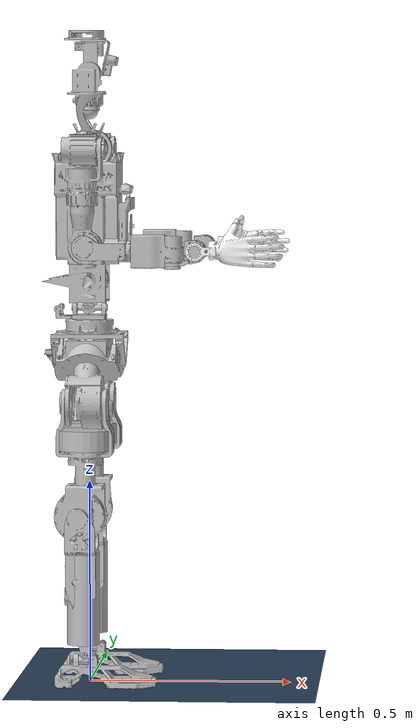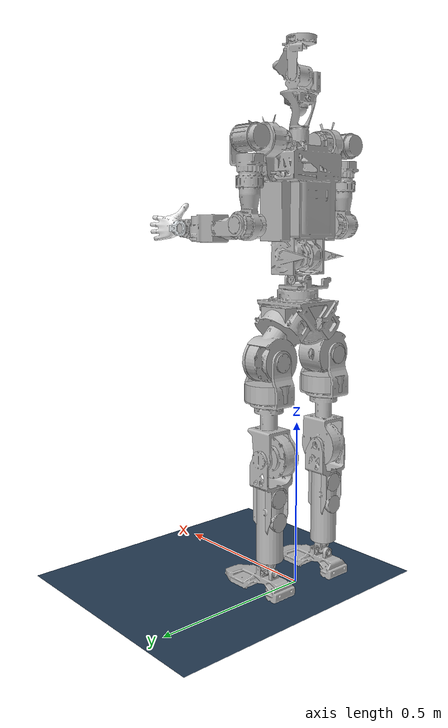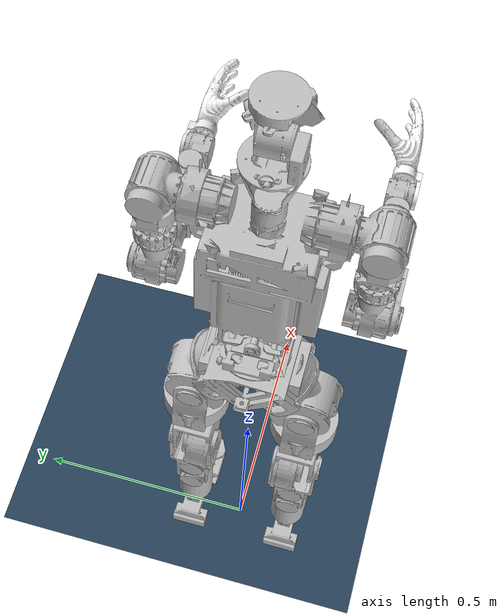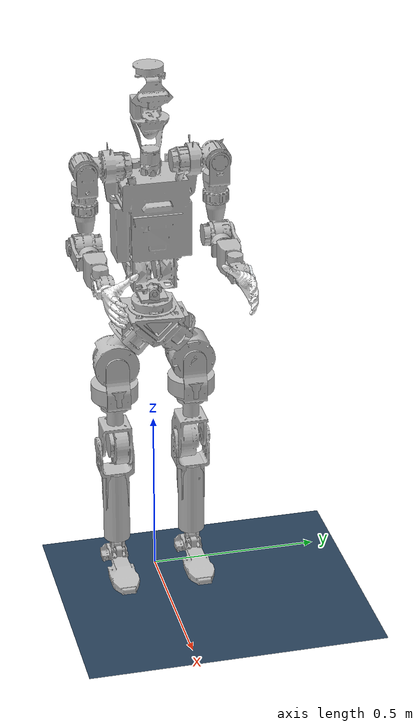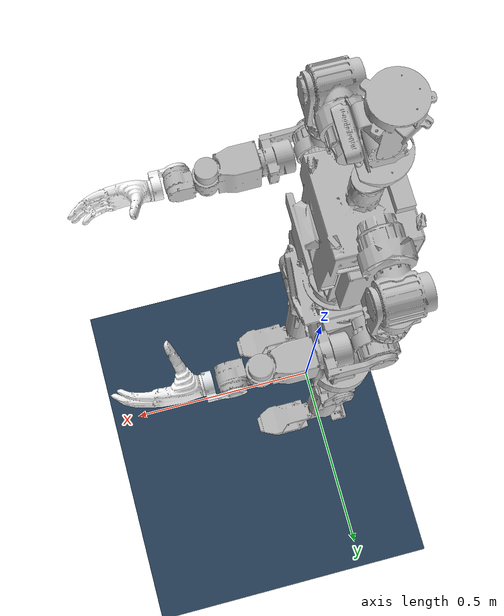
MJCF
<mujoco model="v1.1_u3.0_0303_v0_29dof">
  <compiler angle="radian" meshdir="../urdf/meshes/"/>
  <default>
    <joint damping="0.001" armature="0.01" frictionloss="0.1"/>
  </default>
  <asset>
    <mesh name="base_link" content_type="model/stl" file="base_link.STL"/>
    <mesh name="left_hip_pitch_link" content_type="model/stl" file="left_hip_pitch_link.STL"/>
    <mesh name="left_hip_roll_link" content_type="model/stl" file="left_hip_roll_link.STL"/>
    <mesh name="left_hip_yaw_link" content_type="model/stl" file="left_hip_yaw_link.STL"/>
    <mesh name="left_knee_link" content_type="model/stl" file="left_knee_link.STL"/>
    <mesh name="left_ankle_pitch_link" content_type="model/stl" file="left_ankle_pitch_link.STL"/>
    <mesh name="left_ankle_roll_link" content_type="model/stl" file="left_ankle_roll_link.STL"/>
    <mesh name="right_hip_pitch_link" content_type="model/stl" file="right_hip_pitch_link.STL"/>
    <mesh name="right_hip_roll_link" content_type="model/stl" file="right_hip_roll_link.STL"/>
    <mesh name="right_hip_yaw_link" content_type="model/stl" file="right_hip_yaw_link.STL"/>
    <mesh name="right_knee_link" content_type="model/stl" file="right_knee_link.STL"/>
    <mesh name="right_ankle_pitch_link" content_type="model/stl" file="right_ankle_pitch_link.STL"/>
    <mesh name="right_ankle_roll_link" content_type="model/stl" file="right_ankle_roll_link.STL"/>
    <mesh name="waist_yaw_link" content_type="model/stl" file="waist_yaw_link.STL"/>
    <mesh name="waist_roll_link" content_type="model/stl" file="waist_roll_link.STL"/>
    <mesh name="waist_pitch_link" content_type="model/stl" file="waist_pitch_link.STL"/>
    <mesh name="head_yaw_link" content_type="model/stl" file="head_yaw_link.STL"/>
    <mesh name="head_pitch_link" content_type="model/stl" file="head_pitch_link.STL"/>
    <mesh name="left_shoulder_pitch_link" content_type="model/stl" file="left_shoulder_pitch_link.STL"/>
    <mesh name="left_shoulder_roll_link" content_type="model/stl" file="left_shoulder_roll_link.STL"/>
    <mesh name="left_shoulder_yaw_link" content_type="model/stl" file="left_shoulder_yaw_link.STL"/>
    <mesh name="left_elbow_link" content_type="model/stl" file="left_elbow_link.STL"/>
    <mesh name="left_wrist_roll_link" content_type="model/stl" file="left_wrist_roll_link.STL"/>
    <mesh name="left_wrist_yaw_link" content_type="model/stl" file="left_wrist_yaw_link.STL"/>
    <mesh name="left_wrist_pitch_link" content_type="model/stl" file="left_wrist_pitch_link.STL"/>
    <mesh name="left_hand_link" content_type="model/stl" file="left_hand_link.STL"/>
    <mesh name="right_shoulder_pitch_link" content_type="model/stl" file="right_shoulder_pitch_link.STL"/>
    <mesh name="right_shoulder_roll_link" content_type="model/stl" file="right_shoulder_roll_link.STL"/>
    <mesh name="right_shoulder_yaw_link" content_type="model/stl" file="right_shoulder_yaw_link.STL"/>
    <mesh name="right_elbow_link" content_type="model/stl" file="right_elbow_link.STL"/>
    <mesh name="right_wrist_roll_link" content_type="model/stl" file="right_wrist_roll_link.STL"/>
    <mesh name="right_wrist_yaw_link" content_type="model/stl" file="right_wrist_yaw_link.STL"/>
    <mesh name="right_wrist_pitch_link" content_type="model/stl" file="right_wrist_pitch_link.STL"/>
    <mesh name="right_hand_link" content_type="model/stl" file="right_hand_link.STL"/>
  </asset>

  <worldbody>
    <body name="base_link" pos="0 0 0.87">
      <inertial pos="-0.000112 5e-06 -0.049468" quat="0.498239 0.498283 -0.501755 0.501711" mass="5.717" diaginertia="0.0303601 0.0283439 0.019181"/>
      <joint name="floating_base_joint" type="free" limited="false" actuatorfrclimited="false"/>
      <geom type="mesh" contype="0" conaffinity="0" group="1" density="0" rgba="0.75294 0.75294 0.75294 1" mesh="base_link"/>
      <geom size="0.05 0.1 0.025" pos="0 0 -0.04" type="box" rgba="0.75294 0.75294 0.75294 1"/>
      <site name="imu_in_pelvis" size="0.01" pos="-0.09835 0 -0.052"/>
      <body name="left_hip_pitch_link" pos="0 0.11619 -0.12455" quat="0.923879 -0.382684 0 0">
        <inertial pos="0.003887 0.021532 -0.028237" quat="0.870396 0.486242 -0.0312337 -0.0707405" mass="2.3165" diaginertia="0.00535112 0.00457582 0.00400306"/>
        <joint name="left_hip_pitch_joint" pos="0 0 0" axis="0 1 0" range="-2.618 2.618" actuatorfrcrange="-150 150"/>
        <geom type="mesh" contype="0" conaffinity="0" group="1" density="0" rgba="0.752941 0.752941 0.752941 1" mesh="left_hip_pitch_link"/>
        <body name="left_hip_roll_link" pos="-0.001 0.03 -0.03" quat="0.923879 0.382684 0 0">
          <inertial pos="0.001502 2.7e-05 -0.084234" quat="0.62727 0.326393 0.326393 0.62727" mass="1.48" diaginertia="0.004535 0.00337114 0.00296686"/>
          <joint name="left_hip_roll_joint" pos="0 0 0" axis="1 0 0" range="-0.7854 2.3563" actuatorfrcrange="-150 150"/>
          <geom type="mesh" contype="0" conaffinity="0" group="1" density="0" rgba="0.752941 0.752941 0.752941 1" mesh="left_hip_roll_link"/>
          <geom size="0.07 0.025" pos="0 0 -0.09" type="cylinder" rgba="0.752941 0.752941 0.752941 1"/>
          <body name="left_hip_yaw_link" pos="0 0 -0.13">
            <inertial pos="-0.0107 -0.008795 -0.120268" quat="0.711829 0.00814217 0.0822562 0.697472" mass="2.325" diaginertia="0.00969146 0.00888604 0.00293651"/>
            <joint name="left_hip_yaw_joint" pos="0 0 0" axis="0 0 1" range="-2.0944 2.0944" actuatorfrcrange="-90 90"/>
            <geom type="mesh" contype="0" conaffinity="0" group="1" density="0" rgba="0.752941 0.752941 0.752941 1" mesh="left_hip_yaw_link"/>
            <geom type="mesh" rgba="0.752941 0.752941 0.752941 1" mesh="left_hip_yaw_link"/>
            <body name="left_knee_link" pos="-0.015 0 -0.151">
              <inertial pos="0.004163 0.000262 -0.138565" quat="0.99994 -0.00282969 -0.0106115 1.22531e-05" mass="1.83395" diaginertia="0.0104298 0.00990025 0.00194592"/>
              <joint name="left_knee_joint" pos="0 0 0" axis="0 1 0" range="-0.0873 2.0944" actuatorfrcrange="-150 150"/>
              <geom type="mesh" contype="0" conaffinity="0" group="1" density="0" rgba="0.752941 0.752941 0.752941 1" mesh="left_knee_link"/>
              <geom size="0.04 0.115" pos="0.01 0 -0.2" type="cylinder" rgba="0.752941 0.752941 0.752941 1"/>
              <body name="left_ankle_pitch_link" pos="0.015 0.0005 -0.339">
                <inertial pos="-0.002351 -0.000479 -0.006916" quat="0.344336 0.344336 -0.617602 0.617602" mass="0.102" diaginertia="2.22361e-05 1.77639e-05 1.7e-05"/>
                <joint name="left_ankle_pitch_joint" pos="0 0 0" axis="0 1 0" range="-0.9599 0.5218" actuatorfrcrange="-54 54"/>
                <geom type="mesh" contype="0" conaffinity="0" group="1" density="0" rgba="0.752941 0.752941 0.752941 1" mesh="left_ankle_pitch_link"/>
                <body name="left_ankle_roll_link" pos="0 0 -0.015">
                  <inertial pos="0.04469 -3.2e-05 -0.035309" quat="0.00358632 0.734652 0.00406875 0.678422" mass="0.968" diaginertia="0.00496359 0.00487899 0.000595419"/>
                  <joint name="left_ankle_roll_joint" pos="0 0 0" axis="1 0 0" range="-0.1745 0.1745" actuatorfrcrange="-54 54"/>
                  <geom type="mesh" contype="0" conaffinity="0" group="1" density="0" rgba="0.752941 0.752941 0.752941 1" mesh="left_ankle_roll_link"/>
                  <geom size="0.005" pos="-0.06 0.035 -0.06" rgba="0.752941 0.752941 0.752941 1"/>
                  <geom size="0.005" pos="-0.06 -0.035 -0.06" rgba="0.752941 0.752941 0.752941 1"/>
                  <geom size="0.005" pos="0.13 0.035 -0.06" rgba="0.752941 0.752941 0.752941 1"/>
                  <geom size="0.005" pos="0.13 -0.035 -0.06" rgba="0.752941 0.752941 0.752941 1"/>
                  <geom size="0.005" pos="0.17 0.018 -0.058" rgba="0.752941 0.752941 0.752941 1"/>
                  <geom size="0.005" pos="0.17 -0.018 -0.058" rgba="0.752941 0.752941 0.752941 1"/>
                  <geom size="0.005" pos="-0.035 0.035 -0.06" rgba="0.752941 0.752941 0.752941 1"/>
                  <geom size="0.005" pos="-0.035 -0.035 -0.06" rgba="0.752941 0.752941 0.752941 1"/>
                  <geom size="0.005" pos="0.06 0.035 -0.06" rgba="0.752941 0.752941 0.752941 1"/>
                  <geom size="0.005" pos="0.06 -0.035 -0.06" rgba="0.752941 0.752941 0.752941 1"/>
                </body>
              </body>
            </body>
          </body>
        </body>
      </body>
      <body name="right_hip_pitch_link" pos="0 -0.11619 -0.12455" quat="0.923879 0.382684 0 0">
        <inertial pos="0.003887 -0.021532 -0.028237" quat="0.486242 0.870396 0.0707405 0.0312337" mass="2.3165" diaginertia="0.00535112 0.00457582 0.00400306"/>
        <joint name="right_hip_pitch_joint" pos="0 0 0" axis="0 1 0" range="-2.618 2.618" actuatorfrcrange="-150 150"/>
        <geom type="mesh" contype="0" conaffinity="0" group="1" density="0" rgba="0.752941 0.752941 0.752941 1" mesh="right_hip_pitch_link"/>
        <body name="right_hip_roll_link" pos="-0.001 -0.03 -0.03" quat="0.923879 -0.382684 0 0">
          <inertial pos="0.001502 -2.7e-05 -0.084234" quat="0.62727 0.326393 0.326393 0.62727" mass="1.48" diaginertia="0.004535 0.00337114 0.00296686"/>
          <joint name="right_hip_roll_joint" pos="0 0 0" axis="1 0 0" range="-2.3563 0.7854" actuatorfrcrange="-150 150"/>
          <geom type="mesh" contype="0" conaffinity="0" group="1" density="0" rgba="0.752941 0.752941 0.752941 1" mesh="right_hip_roll_link"/>
          <geom size="0.07 0.025" pos="0 0 -0.09" type="cylinder" rgba="0.752941 0.752941 0.752941 1"/>
          <body name="right_hip_yaw_link" pos="0 0 -0.13">
            <inertial pos="-0.0107 0.008795 -0.120268" quat="0.697472 0.0822562 0.00814217 0.711829" mass="2.325" diaginertia="0.00969146 0.00888604 0.00293651"/>
            <joint name="right_hip_yaw_joint" pos="0 0 0" axis="0 0 1" range="-2.0944 2.0944" actuatorfrcrange="-90 90"/>
            <geom type="mesh" contype="0" conaffinity="0" group="1" density="0" rgba="0.752941 0.752941 0.752941 1" mesh="right_hip_yaw_link"/>
            <geom type="mesh" rgba="0.752941 0.752941 0.752941 1" mesh="right_hip_yaw_link"/>
            <body name="right_knee_link" pos="-0.015 0 -0.151">
              <inertial pos="0.004163 -0.000262 -0.138565" quat="0.99994 0.00282969 -0.0106115 -1.22531e-05" mass="1.83395" diaginertia="0.0104298 0.00990025 0.00194592"/>
              <joint name="right_knee_joint" pos="0 0 0" axis="0 1 0" range="-0.0873 2.0944" actuatorfrcrange="-150 150"/>
              <geom type="mesh" contype="0" conaffinity="0" group="1" density="0" rgba="0.752941 0.752941 0.752941 1" mesh="right_knee_link"/>
              <geom size="0.04 0.115" pos="0.01 0 -0.2" type="cylinder" rgba="0.752941 0.752941 0.752941 1"/>
              <body name="right_ankle_pitch_link" pos="0.015 -0.0005 -0.339">
                <inertial pos="-0.002351 0.000479 -0.006916" quat="0.344336 0.344336 -0.617602 0.617602" mass="0.102" diaginertia="2.22361e-05 1.77639e-05 1.7e-05"/>
                <joint name="right_ankle_pitch_joint" pos="0 0 0" axis="0 1 0" range="-0.9599 0.5218" actuatorfrcrange="-54 54"/>
                <geom type="mesh" contype="0" conaffinity="0" group="1" density="0" rgba="0.752941 0.752941 0.752941 1" mesh="right_ankle_pitch_link"/>
                <body name="right_ankle_roll_link" pos="0 0 -0.015">
                  <inertial pos="0.044949 3.2e-05 -0.035309" quat="-0.00358632 0.734652 -0.00406875 0.678422" mass="0.968" diaginertia="0.00496359 0.00487899 0.000595419"/>
                  <joint name="right_ankle_roll_joint" pos="0 0 0" axis="1 0 0" range="-0.1745 0.1745" actuatorfrcrange="-54 54"/>
                  <geom type="mesh" contype="0" conaffinity="0" group="1" density="0" rgba="0.752941 0.752941 0.752941 1" mesh="right_ankle_roll_link"/>
                  <geom size="0.005" pos="-0.06 0.035 -0.06" rgba="0.752941 0.752941 0.752941 1"/>
                  <geom size="0.005" pos="-0.06 -0.035 -0.06" rgba="0.752941 0.752941 0.752941 1"/>
                  <geom size="0.005" pos="0.13 0.035 -0.06" rgba="0.752941 0.752941 0.752941 1"/>
                  <geom size="0.005" pos="0.13 -0.035 -0.06" rgba="0.752941 0.752941 0.752941 1"/>
                  <geom size="0.005" pos="0.17 0.018 -0.058" rgba="0.752941 0.752941 0.752941 1"/>
                  <geom size="0.005" pos="0.17 -0.018 -0.058" rgba="0.752941 0.752941 0.752941 1"/>
                  <geom size="0.005" pos="-0.035 0.035 -0.06" rgba="0.752941 0.752941 0.752941 1"/>
                  <geom size="0.005" pos="-0.035 -0.035 -0.06" rgba="0.752941 0.752941 0.752941 1"/>
                  <geom size="0.005" pos="0.06 0.035 -0.06" rgba="0.752941 0.752941 0.752941 1"/>
                  <geom size="0.005" pos="0.06 -0.035 -0.06" rgba="0.752941 0.752941 0.752941 1"/>
                </body>
              </body>
            </body>
          </body>
        </body>
      </body>
      <body name="waist_yaw_link">
        <inertial pos="-0.025004 1e-06 0.041503" quat="0 0.73528 0 0.677763" mass="0.287" diaginertia="0.000603691 0.000469 0.000196309"/>
        <joint name="waist_yaw_joint" pos="0 0 0" axis="0 0 1" range="-1.5708 1.5708" actuatorfrcrange="-90 90"/>
        <geom type="mesh" contype="0" conaffinity="0" group="1" density="0" rgba="0.752941 0.752941 0.752941 1" mesh="waist_yaw_link"/>
        <geom size="0.04 0.04 0.005" pos="0 0 0.04" type="box" rgba="0.752941 0.752941 0.752941 1"/>
        <body name="waist_roll_link" pos="0 0 0.0615">
          <inertial pos="0 0 -1.7e-05" quat="0 0.707107 0 0.707107" mass="0.185" diaginertia="7.5e-05 5.5e-05 2.6e-05"/>
          <joint name="waist_roll_joint" pos="0 0 0" axis="1 0 0" range="-0.1745 0.1745" actuatorfrcrange="-90 90"/>
          <geom type="mesh" contype="0" conaffinity="0" group="1" density="0" rgba="0.752941 0.752941 0.752941 1" mesh="waist_roll_link"/>
          <geom type="mesh" rgba="0.752941 0.752941 0.752941 1" mesh="waist_roll_link"/>
          <body name="torso_link">
            <inertial pos="-0.00480175 0.000110024 0.265108" quat="0.999841 0.000167294 0.0178016 -0.000683073" mass="12.4908" diaginertia="0.314143 0.272447 0.0764862"/>
            <joint name="waist_pitch_joint" pos="0 0 0" axis="0 1 0" range="-0.3491 0.6981" actuatorfrcrange="-90 90"/>
            <geom type="mesh" contype="0" conaffinity="0" group="1" density="0" rgba="0.752941 0.752941 0.752941 1" mesh="waist_pitch_link"/>
            <geom type="mesh" rgba="0.752941 0.752941 0.752941 1" mesh="waist_pitch_link"/>
            <geom pos="0 0 0.4375" type="mesh" contype="0" conaffinity="0" group="1" density="0" rgba="0.752941 0.752941 0.752941 1" mesh="head_yaw_link"/>
            <geom pos="0 0 0.4375" type="mesh" rgba="0.752941 0.752941 0.752941 1" mesh="head_yaw_link"/>
            <geom pos="0 0 0.5795" type="mesh" contype="0" conaffinity="0" group="1" density="0" rgba="0.752941 0.752941 0.752941 1" mesh="head_pitch_link"/>
            <geom pos="0 0 0.5795" type="mesh" rgba="0.752941 0.752941 0.752941 1" mesh="head_pitch_link"/>
            <body name="left_shoulder_pitch_link" pos="0 0.1446 0.3935">
              <inertial pos="0.005662 0.045222 -4e-06" quat="0.601501 0.371748 -0.601501 0.371748" mass="0.82" diaginertia="0.000604 0.000578 0.000573"/>
              <joint name="left_shoulder_pitch_joint" pos="0 0 0" axis="0 1 0" range="-2.618 2.618" actuatorfrcrange="-80 80"/>
              <geom type="mesh" contype="0" conaffinity="0" group="1" density="0" rgba="0.752941 0.752941 0.752941 1" mesh="left_shoulder_pitch_link"/>
              <geom type="mesh" rgba="0.752941 0.752941 0.752941 1" mesh="left_shoulder_pitch_link"/>
              <body name="left_shoulder_roll_link" pos="0 0.047 0">
                <inertial pos="0.004162 6e-05 -0.097299" quat="0.688168 0.162556 0.162556 0.688168" mass="0.888" diaginertia="0.001422 0.0014176 0.0007054"/>
                <joint name="left_shoulder_roll_joint" pos="0 0 0" axis="1 0 0" range="-0.0873 3.2289" actuatorfrcrange="-80 80"/>
                <geom type="mesh" contype="0" conaffinity="0" group="1" density="0" rgba="0.752941 0.752941 0.752941 1" mesh="left_shoulder_roll_link"/>
                <geom type="mesh" rgba="0.752941 0.752941 0.752941 1" mesh="left_shoulder_roll_link"/>
                <body name="left_shoulder_yaw_link" pos="-0.00072034 0 -0.1346">
                  <inertial pos="0.006267 0.007667 -0.091718" quat="0.696333 0.00192978 -0.0814017 0.713085" mass="0.98" diaginertia="0.00140405 0.00136938 0.000763573"/>
                  <joint name="left_shoulder_yaw_joint" pos="0 0 0" axis="0 0 1" range="-2.618 2.618" actuatorfrcrange="-80 80"/>
                  <geom type="mesh" contype="0" conaffinity="0" group="1" density="0" rgba="0.752941 0.752941 0.752941 1" mesh="left_shoulder_yaw_link"/>
                  <geom type="mesh" rgba="0.752941 0.752941 0.752941 1" mesh="left_shoulder_yaw_link"/>
                  <body name="left_elbow_link" pos="0.0075 0 -0.1019">
                    <inertial pos="0.081388 0.010684 -0.008487" quat="0.204129 0.704737 -0.163861 0.659413" mass="0.516" diaginertia="0.000713308 0.00066173 0.000240962"/>
                    <joint name="left_elbow_joint" pos="0 0 0" axis="0 1 0" range="-0.6981 3.3161" actuatorfrcrange="-80 80"/>
                    <geom type="mesh" contype="0" conaffinity="0" group="1" density="0" rgba="0.752941 0.752941 0.752941 1" mesh="left_elbow_link"/>
                    <geom type="mesh" rgba="0.752941 0.752941 0.752941 1" mesh="left_elbow_link"/>
                    <body name="left_wrist_roll_link" pos="0.1 0.0019 -0.009">
                      <inertial pos="0.08529 -4.2e-05 -0.005123" quat="0.460214 0.536845 0.536845 0.460214" mass="0.67" diaginertia="0.00113 0.00105584 0.000420156"/>
                      <joint name="left_wrist_roll_joint" pos="0 0 0" axis="1 0 0" range="-2.618 2.618" actuatorfrcrange="-11.5 11.5"/>
                      <geom type="mesh" contype="0" conaffinity="0" group="1" density="0" rgba="0.752941 0.752941 0.752941 1" mesh="left_wrist_roll_link"/>
                      <geom type="mesh" rgba="0.752941 0.752941 0.752941 1" mesh="left_wrist_roll_link"/>
                      <body name="left_wrist_yaw_link" pos="0.1135 0 0">
                        <inertial pos="0.051473 0.006559 -0.001913" quat="0.598709 0.294471 0.367661 0.647811" mass="0.365" diaginertia="0.0001769 0.000172925 0.000118175"/>
                        <joint name="left_wrist_yaw_joint" pos="0 0 0" axis="0 0 1" range="-1.6581 1.5708" actuatorfrcrange="-11.5 11.5"/>
                        <geom type="mesh" contype="0" conaffinity="0" group="1" density="0" rgba="0.752941 0.752941 0.752941 1" mesh="left_wrist_yaw_link"/>
                        <geom type="mesh" rgba="0.752941 0.752941 0.752941 1" mesh="left_wrist_yaw_link"/>
                        <body name="left_wrist_pitch_link" pos="0.054 0 0">
                          <inertial pos="0.112572 -0.00616709 0.0100642" quat="0.689134 0.340149 0.55866 0.311917" mass="0.549" diaginertia="0.0019349 0.00153131 0.000570391"/>
                          <joint name="left_wrist_pitch_joint" pos="0 0 0" axis="0 1 0" range="-1.6581 1.4835" actuatorfrcrange="-11.5 11.5"/>
                          <geom type="mesh" contype="0" conaffinity="0" group="1" density="0" rgba="0.898039 0.917647 0.929412 1" mesh="left_wrist_pitch_link"/>
                          <geom type="mesh" rgba="0.898039 0.917647 0.929412 1" mesh="left_wrist_pitch_link"/>
                          <geom pos="0.052 0 0.001" quat="1 0 0 0" type="mesh" contype="0" conaffinity="0" group="1" density="0" rgba="1 1 1 1" mesh="left_hand_link"/>
                          <geom pos="0.052 0 0.001" quat="1 0 0 0" type="mesh" rgba="1 1 1 1" mesh="left_hand_link"/>
                        </body>
                      </body>
                    </body>
                  </body>
                </body>
              </body>
            </body>
            <body name="right_shoulder_pitch_link" pos="0 -0.1446 0.3935">
              <inertial pos="0.005662 -0.045222 -4e-06" quat="0.371748 0.601501 -0.371748 0.601501" mass="0.82" diaginertia="0.000604 0.000578 0.000573"/>
              <joint name="right_shoulder_pitch_joint" pos="0 0 0" axis="0 1 0" range="-2.618 2.618" actuatorfrcrange="-80 80"/>
              <geom type="mesh" contype="0" conaffinity="0" group="1" density="0" rgba="0.752941 0.752941 0.752941 1" mesh="right_shoulder_pitch_link"/>
              <geom type="mesh" rgba="0.752941 0.752941 0.752941 1" mesh="right_shoulder_pitch_link"/>
              <body name="right_shoulder_roll_link" pos="0 -0.047 0">
                <inertial pos="0.004162 -6e-05 -0.097299" quat="0.688168 0.162556 0.162556 0.688168" mass="0.888" diaginertia="0.001422 0.0014176 0.0007054"/>
                <joint name="right_shoulder_roll_joint" pos="0 0 0" axis="1 0 0" range="-3.2289 0.0873" actuatorfrcrange="-80 80"/>
                <geom type="mesh" contype="0" conaffinity="0" group="1" density="0" rgba="0.752941 0.752941 0.752941 1" mesh="right_shoulder_roll_link"/>
                <geom type="mesh" rgba="0.752941 0.752941 0.752941 1" mesh="right_shoulder_roll_link"/>
                <body name="right_shoulder_yaw_link" pos="-0.00072034 0 -0.1346">
                  <inertial pos="0.006267 -0.007667 -0.091718" quat="0.713085 -0.0814017 0.00192978 0.696333" mass="0.98" diaginertia="0.00140405 0.00136938 0.000763573"/>
                  <joint name="right_shoulder_yaw_joint" pos="0 0 0" axis="0 0 1" range="-2.618 2.618" actuatorfrcrange="-80 80"/>
                  <geom type="mesh" contype="0" conaffinity="0" group="1" density="0" rgba="0.752941 0.752941 0.752941 1" mesh="right_shoulder_yaw_link"/>
                  <geom type="mesh" rgba="0.752941 0.752941 0.752941 1" mesh="right_shoulder_yaw_link"/>
                  <body name="right_elbow_link" pos="0.0075 0 -0.1019">
                    <inertial pos="0.081388 -0.010683 -0.008487" quat="-0.204129 0.704737 0.163861 0.659413" mass="0.516" diaginertia="0.000713308 0.00066173 0.000240962"/>
                    <joint name="right_elbow_joint" pos="0 0 0" axis="0 1 0" range="-0.6981 3.3161" actuatorfrcrange="-80 80"/>
                    <geom type="mesh" contype="0" conaffinity="0" group="1" density="0" rgba="0.752941 0.752941 0.752941 1" mesh="right_elbow_link"/>
                    <geom type="mesh" rgba="0.752941 0.752941 0.752941 1" mesh="right_elbow_link"/>
                    <body name="right_wrist_roll_link" pos="0.1 -0.0019 -0.009">
                      <inertial pos="0.08529 4.2e-05 -0.005123" quat="0.460214 0.536845 0.536845 0.460214" mass="0.67" diaginertia="0.00113 0.00105584 0.000420156"/>
                      <joint name="right_wrist_roll_joint" pos="0 0 0" axis="1 0 0" range="-2.618 2.618" actuatorfrcrange="-11.5 11.5"/>
                      <geom type="mesh" contype="0" conaffinity="0" group="1" density="0" rgba="0.752941 0.752941 0.752941 1" mesh="right_wrist_roll_link"/>
                      <geom type="mesh" rgba="0.752941 0.752941 0.752941 1" mesh="right_wrist_roll_link"/>
                      <body name="right_wrist_yaw_link" pos="0.1135 0 0">
                        <inertial pos="0.051473 -0.006559 -0.001913" quat="0.647811 0.367661 0.294471 0.598709" mass="0.365" diaginertia="0.0001769 0.000172925 0.000118175"/>
                        <joint name="right_wrist_yaw_joint" pos="0 0 0" axis="0 0 1" range="-1.5708 1.6581" actuatorfrcrange="-11.5 11.5"/>
                        <geom type="mesh" contype="0" conaffinity="0" group="1" density="0" rgba="0.752941 0.752941 0.752941 1" mesh="right_wrist_yaw_link"/>
                        <geom type="mesh" rgba="0.752941 0.752941 0.752941 1" mesh="right_wrist_yaw_link"/>
                        <body name="right_wrist_pitch_link" pos="0.054 0 0">
                          <inertial pos="0.112572 0.00707784 0.00915344" quat="0.309661 0.559561 0.341853 0.688577" mass="0.549" diaginertia="0.00193583 0.00153132 0.000571665"/>
                          <joint name="right_wrist_pitch_joint" pos="0 0 0" axis="0 1 0" range="-1.6581 1.4835" actuatorfrcrange="-11.5 11.5"/>
                          <geom type="mesh" contype="0" conaffinity="0" group="1" density="0" rgba="1 1 1 1" mesh="right_wrist_pitch_link"/>
                          <geom type="mesh" rgba="1 1 1 1" mesh="right_wrist_pitch_link"/>
                          <geom pos="0.052 0.001 0" quat="1 0 0 0" type="mesh" contype="0" conaffinity="0" group="1" density="0" rgba="1 1 1 1" mesh="right_hand_link"/>
                          <geom pos="0.052 0.001 0" quat="1 0 0 0" type="mesh" rgba="1 1 1 1" mesh="right_hand_link"/>
                        </body>
                      </body>
                    </body>
                  </body>
                </body>
              </body>
            </body>
          </body>
        </body>
      </body>
    </body>
  </worldbody>
  <actuator>
    <motor name="left_hip_pitch_joint" joint="left_hip_pitch_joint"/>
    <motor name="left_hip_roll_joint" joint="left_hip_roll_joint"/>
    <motor name="left_hip_yaw_joint" joint="left_hip_yaw_joint"/>
    <motor name="left_knee_joint" joint="left_knee_joint"/>
    <motor name="left_ankle_pitch_joint" joint="left_ankle_pitch_joint"/>
    <motor name="left_ankle_roll_joint" joint="left_ankle_roll_joint"/>
    <motor name="right_hip_pitch_joint" joint="right_hip_pitch_joint"/>
    <motor name="right_hip_roll_joint" joint="right_hip_roll_joint"/>
    <motor name="right_hip_yaw_joint" joint="right_hip_yaw_joint"/>
    <motor name="right_knee_joint" joint="right_knee_joint"/>
    <motor name="right_ankle_pitch_joint" joint="right_ankle_pitch_joint"/>
    <motor name="right_ankle_roll_joint" joint="right_ankle_roll_joint"/>
    <motor name="waist_yaw_joint" joint="waist_yaw_joint"/>
    <motor name="waist_roll_joint" joint="waist_roll_joint"/>
    <motor name="waist_pitch_joint" joint="waist_pitch_joint"/>
    <motor name="left_shoulder_pitch_joint" joint="left_shoulder_pitch_joint"/>
    <motor name="left_shoulder_roll_joint" joint="left_shoulder_roll_joint"/>
    <motor name="left_shoulder_yaw_joint" joint="left_shoulder_yaw_joint"/>
    <motor name="left_elbow_joint" joint="left_elbow_joint"/>
    <motor name="left_wrist_roll_joint" joint="left_wrist_roll_joint"/>
    <motor name="left_wrist_yaw_joint" joint="left_wrist_yaw_joint"/>
    <motor name="left_wrist_pitch_joint" joint="left_wrist_pitch_joint"/>
    <motor name="right_shoulder_pitch_joint" joint="right_shoulder_pitch_joint"/>
    <motor name="right_shoulder_roll_joint" joint="right_shoulder_roll_joint"/>
    <motor name="right_shoulder_yaw_joint" joint="right_shoulder_yaw_joint"/>
    <motor name="right_elbow_joint" joint="right_elbow_joint"/>
    <motor name="right_wrist_roll_joint" joint="right_wrist_roll_joint"/>
    <motor name="right_wrist_yaw_joint" joint="right_wrist_yaw_joint"/>
    <motor name="right_wrist_pitch_joint" joint="right_wrist_pitch_joint"/>
  </actuator>

  <sensor>
    <framequat name="orientation" objtype="site" objname="imu_in_pelvis" noise="0"/>
    <gyro name="imu-pelvis-angular-velocity" site="imu_in_pelvis" noise="0.001"/>
    <framepos name="body-linear-pos" objtype="site" objname="imu_in_pelvis"/>
    <velocimeter name="body-linear-vel" site="imu_in_pelvis"/>
    <accelerometer name="body-linear-acceleration" site="imu_in_pelvis" noise="0.001"/>

  </sensor>
  <statistic center="1.0 0.7 1.0" extent="0.8"/>
  <visual>
    <headlight diffuse="0.6 0.6 0.6" ambient="0.1 0.1 0.1" specular="0.9 0.9 0.9"/>
    <rgba haze="0.15 0.25 0.35 1"/>
    <global azimuth="-140" elevation="-20"/>
  </visual>
  <asset>
    <texture type="skybox" builtin="flat" rgb1="0 0 0" rgb2="0 0 0" width="512" height="3072"/>
    <texture type="2d" name="groundplane" builtin="checker" mark="edge" rgb1="0.2 0.3 0.4" rgb2="0.1 0.2 0.3" markrgb="0.8 0.8 0.8" width="300" height="300"/>
    <material name="groundplane" texture="groundplane" texuniform="true" texrepeat="5 5" reflectance="0.2"/>
  </asset>
  <worldbody>
    <light pos="1 0 3.5" dir="0 0 -1" directional="true"/>
    <geom name="floor" size="0 0 0.05" type="plane" material="groundplane"/>
  </worldbody>
  <keyframe>
  <key name="home"
    qpos="
    0 0 0.87
    1 0 0 0
    -0.1 0.0 -0.07 0.25 -0.14 0.0
    -0.1 0.0 0.07 0.25 -0.14 0.0
    0.0 0.0 0.0
    0.1 0.15 -0.1 1.25 0.0 0.0 0.0
    0.1 -0.15 0.1 1.25 0.0 0.0 0.0
    "/>
  </keyframe>
</mujoco>
